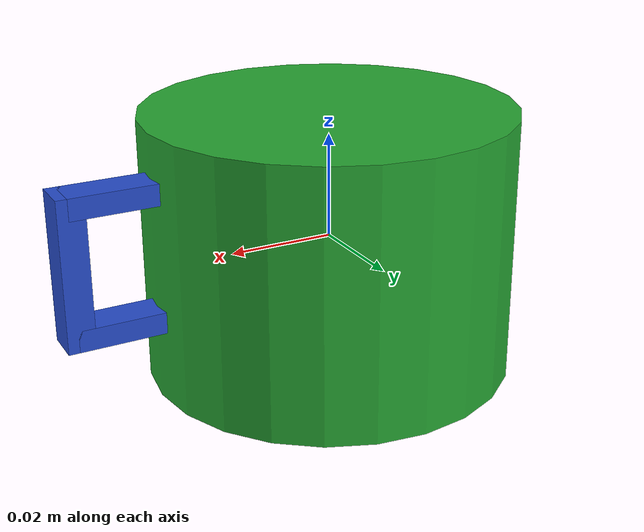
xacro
<?xml version="1.0" ?>
<robot name="cup" xmlns:xacro="http://ros.org/wiki/xacro">

  <xacro:include filename="$(find ur5_gripper_moveit_config)/env_urdf/common.xacro"/>

  <link name="base_link">
    <inertial>
      <origin xyz="0 0 0" rpy="0 0 0"/>
      <cylinder_inertial mass="0.3" radius="0.035" length="0.05"/>
    </inertial>
    <visual>
      <origin xyz="0 0 0" rpy="0 0 0"/>
      <geometry>
        <cylinder length="0.05" radius="0.035"/>
      </geometry>
    </visual>
    <collision>
      <origin xyz="0 0 0" rpy="0 0 0"/>
      <geometry>
        <cylinder length="0.05" radius="0.035"/>
      </geometry>
    </collision>
  </link>

  <joint name="handle_joint" type="fixed">
    <parent link="base_link"/>
    <child link="handle_link1"/>
    <origin xyz="0.0385 0 0.015" rpy="0 0 0"/>
  </joint>

  <link name="handle_link1">
    <inertial>
      <box_inertial mass="0.01" height="0.028" width="0.007" depth="0.004"/>
    </inertial>
    <visual>
      <origin xyz="0 0 0" rpy="0 0 0"/>
      <geometry>
        <box size="0.024 0.007 0.004"/>
      </geometry>
    </visual>
    <collision>
      <origin xyz="0 0 0" rpy="0 0 0"/>
      <geometry>
        <box size="0.024 0.007 0.004" />
      </geometry>
    </collision>
  </link>

  <joint name="handle_joint2" type="fixed">
    <parent link="handle_link1"/>
    <child link="handle_link2"/>
    <origin xyz="0.0115 0 -0.012" rpy="0 0 0"/>
  </joint>

  <link name="handle_link2">
    <inertial>
      <box_inertial mass="0.01" height="0.005" width="0.007" depth="0.028"/>
    </inertial>
    <visual>
      <origin xyz="0 0 0" rpy="0 0 0"/>
      <geometry>
        <box size="0.005 0.007 0.028"/>
      </geometry>
    </visual>
    <collision>
      <origin xyz="0 0 0" rpy="0 0 0"/>
      <geometry>
        <box size="0.005 0.007 0.028"/>
      </geometry>
    </collision>
  </link>

  <joint name="handle_joint3" type="fixed">
    <parent link="handle_link2"/>
    <child link="handle_link3"/>
    <origin xyz="-0.0115 0 -0.012" rpy="0 0 0"/>
  </joint>

  <link name="handle_link3">
    <inertial>
      <box_inertial mass="0.01" height="0.024" width="0.007" depth="0.004"/>
    </inertial>
    <visual>
      <origin xyz="0 0 0" rpy="0 0 0"/>
      <geometry>
        <box size="0.024 0.007 0.004"/>
      </geometry>
    </visual>
    <collision>
      <origin xyz="0 0 0" rpy="0 0 0"/>
      <geometry>
        <box size="0.024 0.007 0.004"/>
      </geometry>
    </collision>
  </link>

  <gazebo reference="base_link">
    <material>Gazebo/Green</material>
  </gazebo>

  <gazebo reference="handle_link1">
    <material>Gazebo/Blue</material>
  </gazebo>
  <gazebo reference="handle_link2">
    <material>Gazebo/Blue</material>
  </gazebo>
  <gazebo reference="handle_link3">
    <material>Gazebo/Blue</material>
  </gazebo>

</robot>

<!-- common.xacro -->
<robot xmlns:xacro="http://ros.org/wiki/xacro">
  <property name="PI" value="3.141592"/>

  <xacro:macro name="cylinder_inertial" params="mass radius length">
	<mass value="${mass}"/>
	<inertia ixx="${((radius*radius)/4 + (length*length)/12)*mass}" ixy="0" ixz="0"
			 iyy="${((radius*radius)/4 + (length*length)/12)*mass}" iyz="0"
			 izz="${(mass*radius*radius)/2}" />
  </xacro:macro>

  <xacro:macro name="box_inertial" params="mass height width depth">
	<mass value="${mass}"/>
	<inertia ixx="${(mass*(width*width+depth*depth))/12}" ixy="0" ixz="0"
			 iyy="${(mass*(height*height+depth*depth))/12}" iyz="0"
			 izz="${(mass*(height*height+width*width))/12}" />
  </xacro:macro>
</robot>
